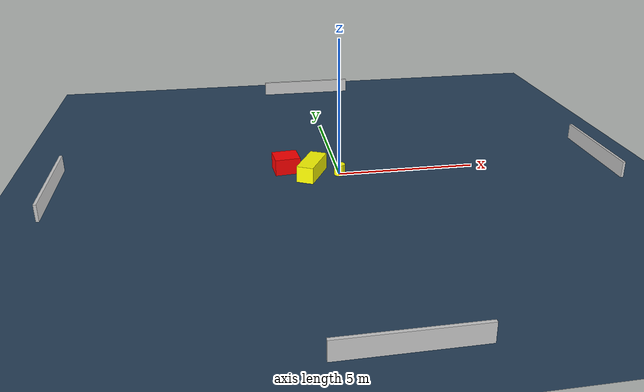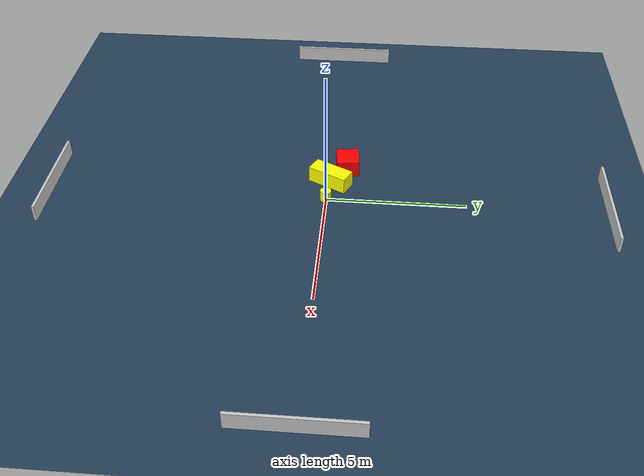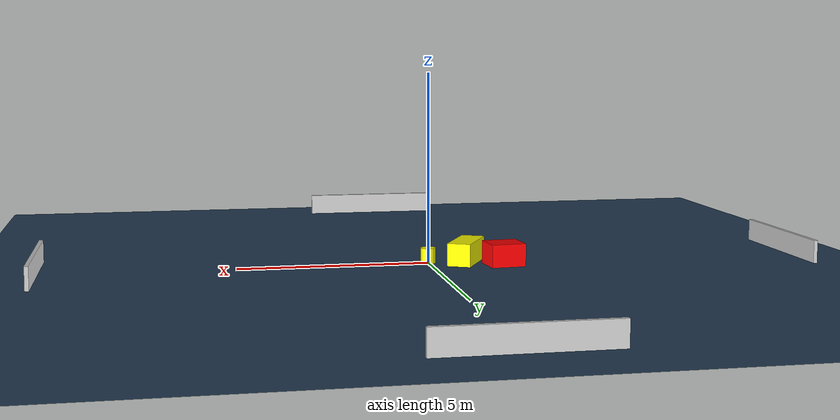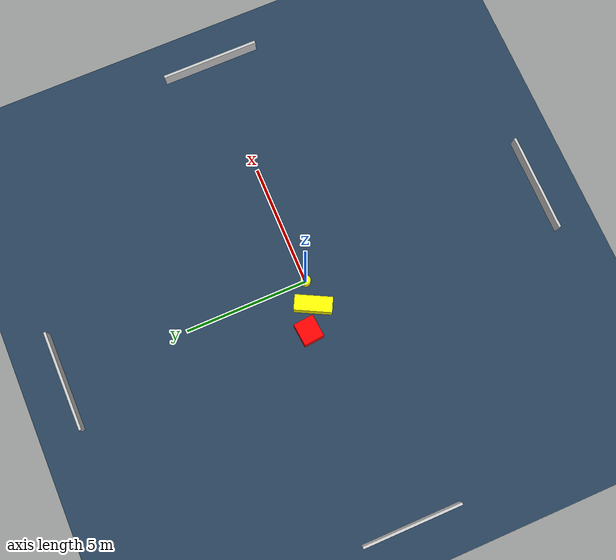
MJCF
<?xml version="1.0" ?>
<mujoco model="generated_environment">
  <option timestep="0.01" integrator="RK4" cone="elliptic"/>
  <default>
    <geom density="1"/>
  </default>
  <asset>
    <texture builtin="gradient" height="3072" name="skybox" rgb1="0.3 0.5 0.7" rgb2="0 0 0" type="skybox" width="512"/>
    <texture builtin="checker" height="300" name="groundplane" rgb1="0.2 0.3 0.4" rgb2="0.1 0.2 0.3" type="2d" width="300"/>
    <material name="groundplane" reflectance="0.2" texrepeat="5 5" texture="groundplane"/>
  </asset>
  <worldbody>
    <light dir="0 0 -1" directional="true" pos="0 0 1.5"/>
    <geom condim="3" friction="0.5 0.005 0.001" material="groundplane" name="floor" pos="0 0 0" size="0 0 0.05" type="plane"/>
    <body name="walls">
      <geom name="wall_1" condim="4" pos="-10.0 0.0 0.3" rgba="0.800000011920929 0.800000011920929 0.800000011920929 1.0" size="0.05 2.0 0.3" type="box"/>
      <geom name="wall_2" condim="4" pos="10.0 0.0 0.3" rgba="0.800000011920929 0.800000011920929 0.800000011920929 1.0" size="0.05 2.0 0.3" type="box"/>
      <geom name="wall_3" condim="4" pos="0.0 -10.0 0.3" rgba="0.800000011920929 0.800000011920929 0.800000011920929 1.0" size="2.0 0.05 0.3" type="box"/>
      <geom name="wall_4" condim="4" pos="0.0 10.0 0.3" rgba="0.800000011920929 0.800000011920929 0.800000011920929 1.0" size="2.0 0.05 0.3" type="box"/>
    </body>
    <body name="robot">
      <joint name="joint_x" type="slide" pos="0 0 0" axis="1 0 0"/>
      <joint name="joint_y" type="slide" pos="0 0 0" axis="0 1 0"/>
      <geom name="robot" type="cylinder" pos="0.0 0.0 0.2" size="0.2 0.2 0.0" mass="5.0" friction="1.0 0.005 0.0001" condim="4" rgba="1.0 1.0 0.0 1.0"/>
    </body>
    <body name="obstacle_1_movable">
      <geom name="obstacle_1_movable" condim="4" pos="-0.9992275505027137 0.09924947772450252 0.3" euler="0 0 152.70765714454564" friction="0.0 0.005 0.001" rgba="1.0 1.0 0.0 1.0" size="0.30779642228818094 0.7462482230520724 0.3" type="box" mass="0.1"/>
      <joint type="free"/>
    </body>
    <body name="obstacle_2_static">
      <geom name="obstacle_2_static" condim="4" pos="-1.8847776255897783 0.6681726423330219 0.3" euler="0 0 185.3509427287397" friction="0.0 0.005 0.001" rgba="1.0 0.0 0.0 1.0" size="0.456476440658727 0.41463256489388334 0.3" type="box"/>
    </body>
  </worldbody>
  <actuator>
    <motor name="actuator_x" joint="joint_x" gear="1" ctrlrange="-1 1"/>
    <motor name="actuator_y" joint="joint_y" gear="1" ctrlrange="-1 1"/>
  </actuator>
</mujoco>
